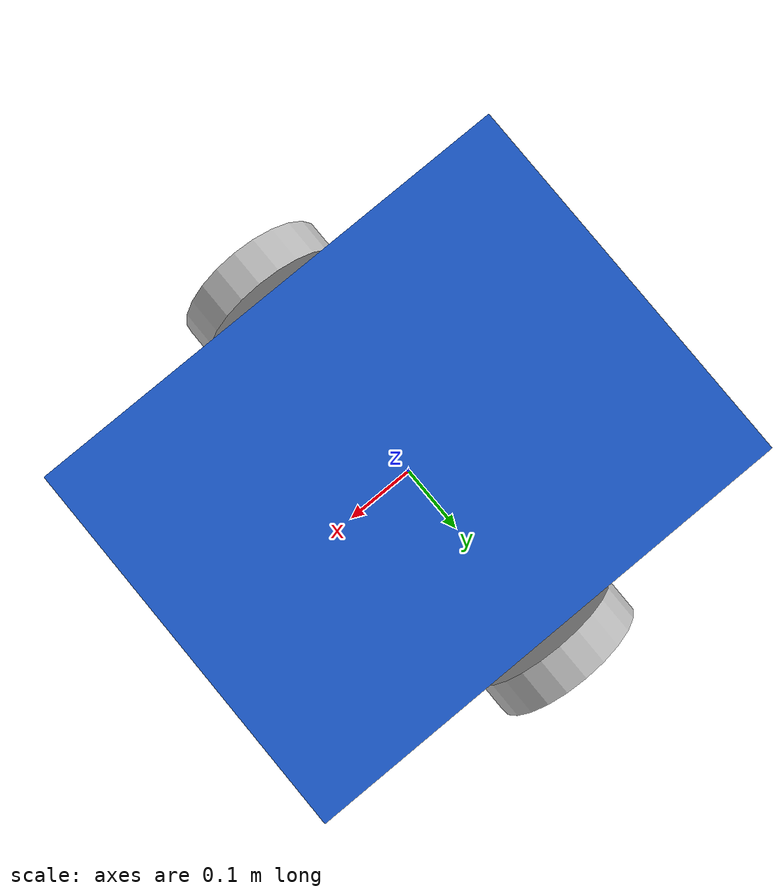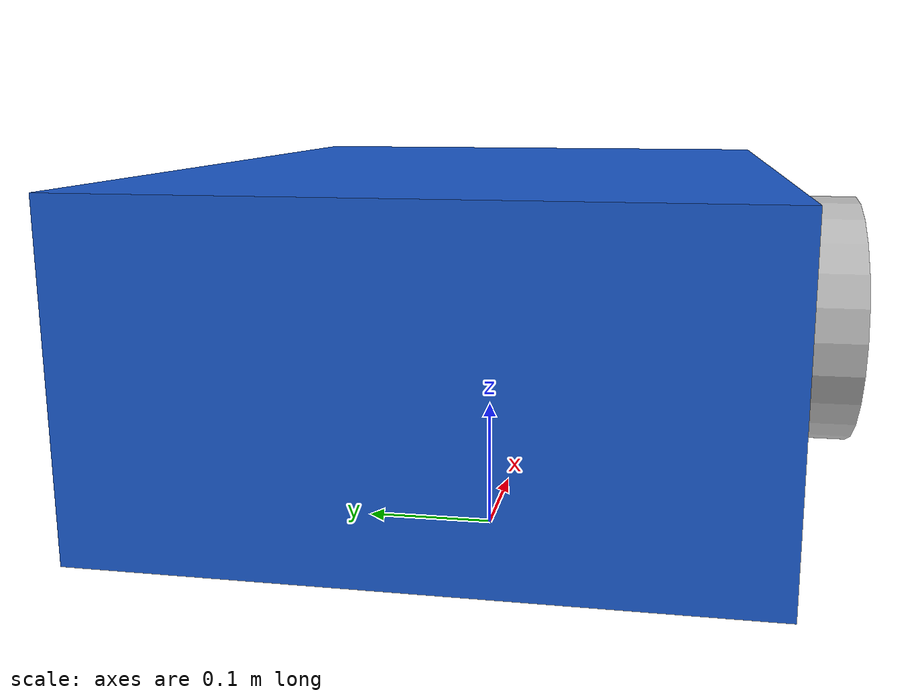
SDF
<?xml version="1.0"?>
<sdf version="1.10">
  <model name="fleet_bot">
    <pose>0 0 0.18 0 0 0</pose>
    <link name="base_link">
      <inertial><mass>12.0</mass><inertia><ixx>0.35</ixx><iyy>0.35</iyy><izz>0.45</izz></inertia></inertial>
      <collision name="body_collision"><geometry><box><size>0.55 0.42 0.22</size></box></geometry></collision>
      <visual name="body_visual"><geometry><box><size>0.55 0.42 0.22</size></box></geometry><material><ambient>0.1 0.35 0.8 1</ambient><diffuse>0.1 0.35 0.8 1</diffuse></material></visual>
      <sensor name="lidar" type="gpu_lidar">
        <pose>0.08 0 0.20 0 0 0</pose>
        <topic>scan</topic>
        <update_rate>10</update_rate>
        <ray><scan><horizontal><samples>360</samples><resolution>1</resolution><min_angle>-3.14159</min_angle><max_angle>3.14159</max_angle></horizontal></scan><range><min>0.12</min><max>8.0</max><resolution>0.02</resolution></range></ray>
        <always_on>true</always_on><visualize>true</visualize>
      </sensor>
    </link>
    <link name="left_wheel"><pose>0 0.25 0 1.5708 0 0</pose><collision name="c"><geometry><cylinder><radius>0.09</radius><length>0.04</length></cylinder></geometry></collision><visual name="v"><geometry><cylinder><radius>0.09</radius><length>0.04</length></cylinder></geometry></visual></link>
    <link name="right_wheel"><pose>0 -0.25 0 1.5708 0 0</pose><collision name="c"><geometry><cylinder><radius>0.09</radius><length>0.04</length></cylinder></geometry></collision><visual name="v"><geometry><cylinder><radius>0.09</radius><length>0.04</length></cylinder></geometry></visual></link>
    <joint name="left_wheel_joint" type="revolute"><parent>base_link</parent><child>left_wheel</child><axis><xyz>0 1 0</xyz></axis></joint>
    <joint name="right_wheel_joint" type="revolute"><parent>base_link</parent><child>right_wheel</child><axis><xyz>0 1 0</xyz></axis></joint>
    <plugin filename="gz-sim-diff-drive-system" name="gz::sim::systems::DiffDrive">
      <left_joint>left_wheel_joint</left_joint><right_joint>right_wheel_joint</right_joint>
      <wheel_separation>0.50</wheel_separation><wheel_radius>0.09</wheel_radius>
      <topic>cmd_vel</topic><odom_topic>odom</odom_topic><frame_id>odom</frame_id><child_frame_id>base_link</child_frame_id>
    </plugin>
    <plugin filename="gz-sim-joint-state-publisher-system" name="gz::sim::systems::JointStatePublisher"/>
  </model>
</sdf>
